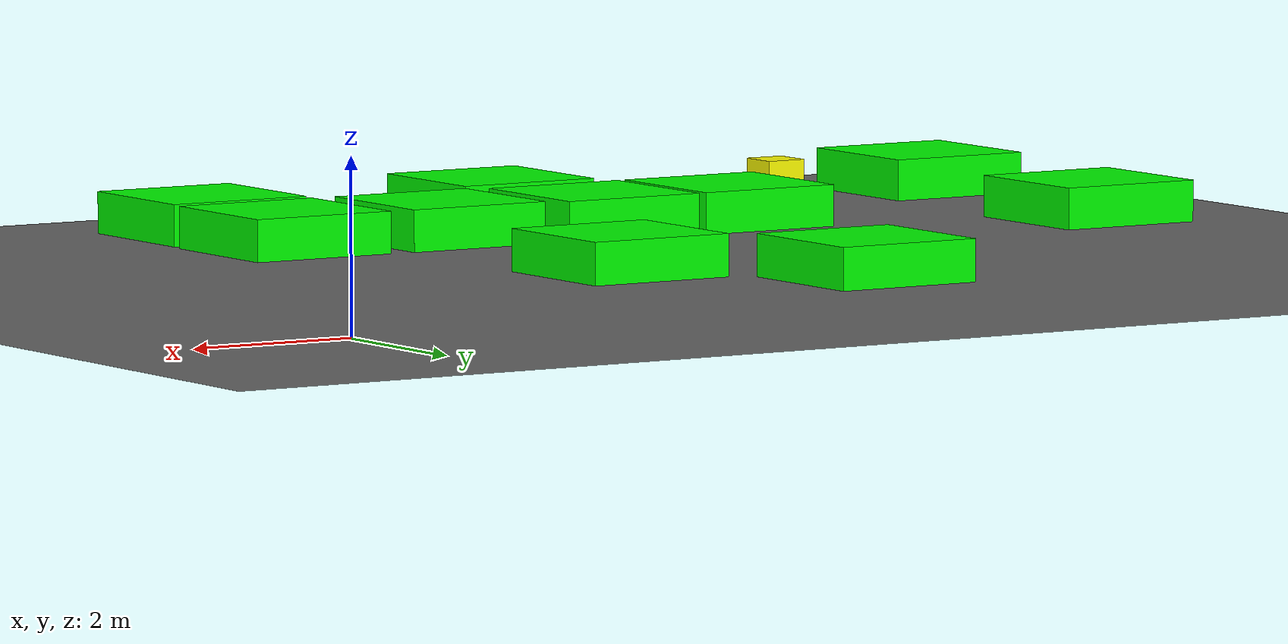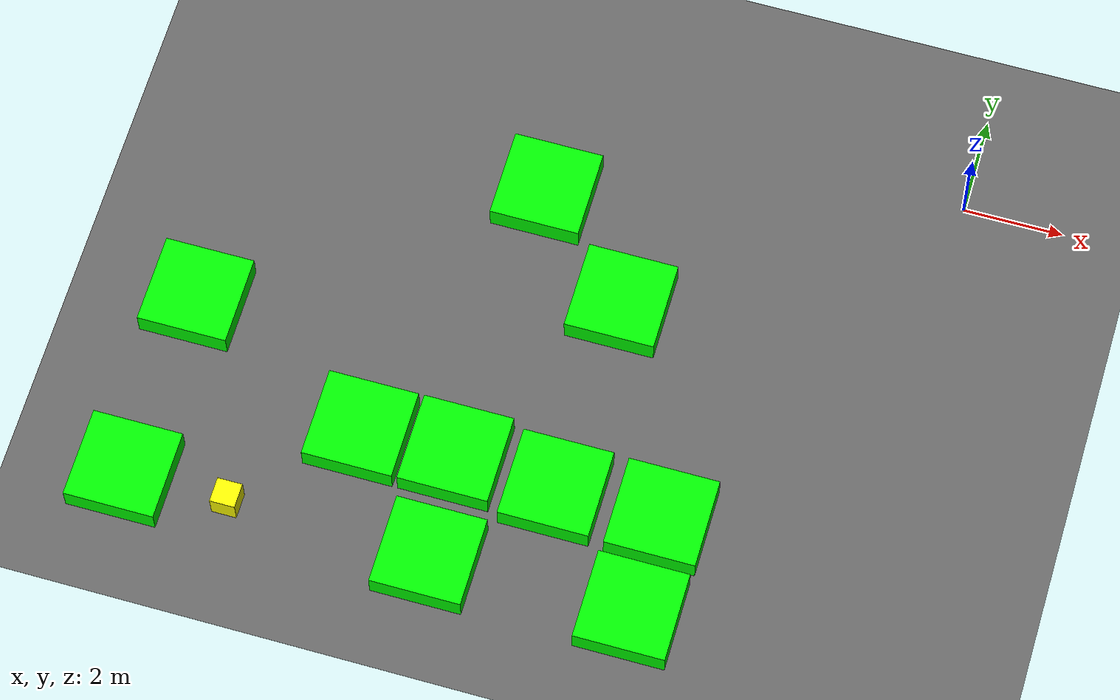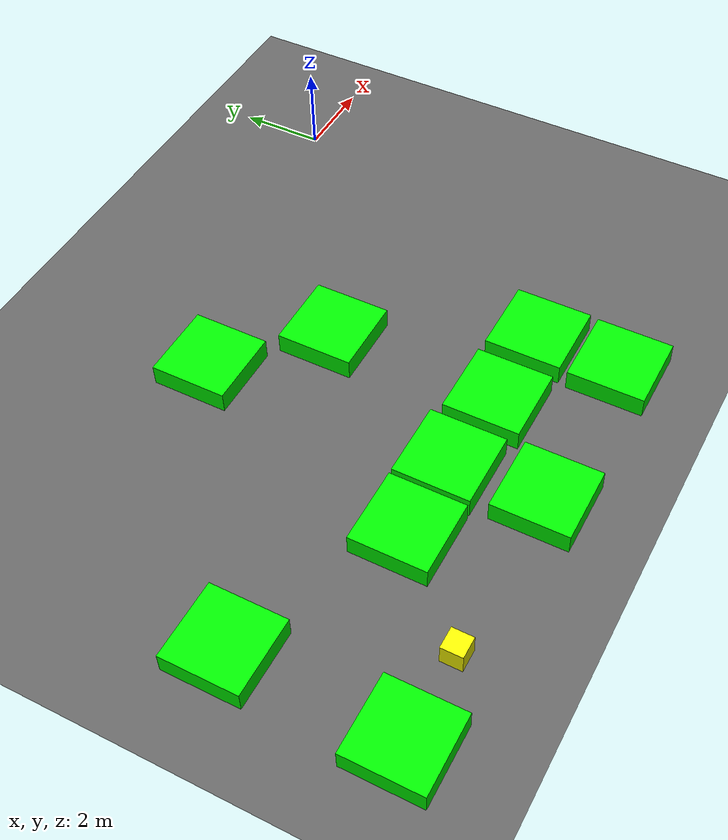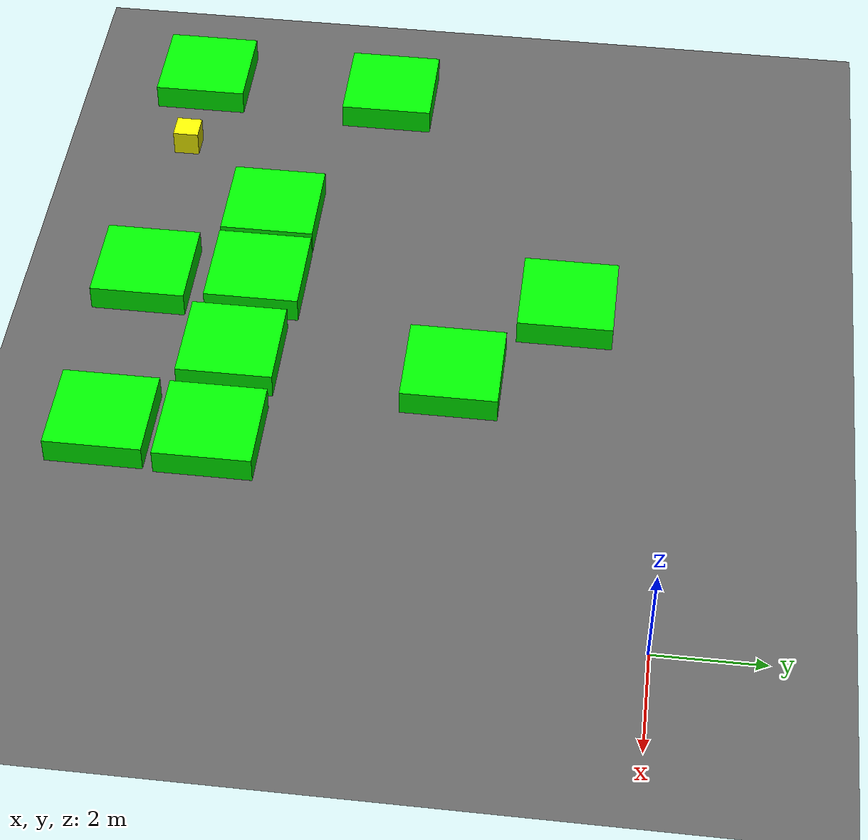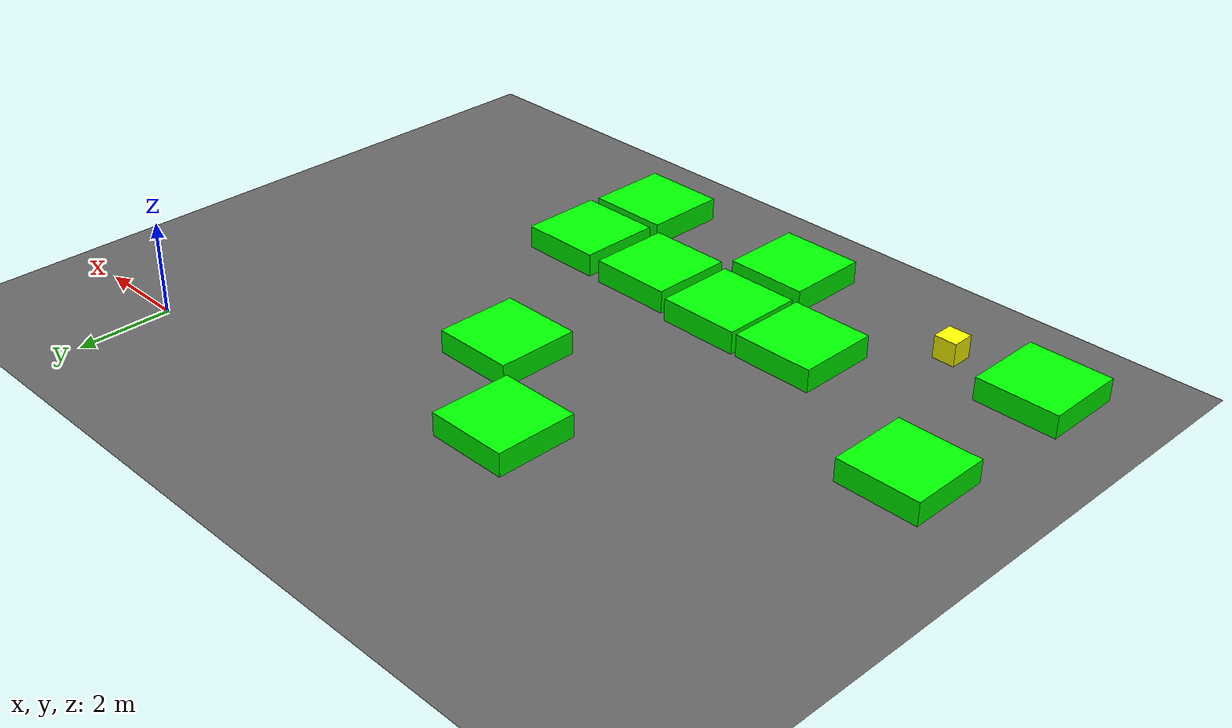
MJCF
<mujoco model="lvl5_corridor_obs10_dlong_depth1_seed46">
    <compiler angle="degree" coordinate="local" inertiafromgeom="true"/>
    <option integrator="RK4" timestep="0.01"/>

    <asset>
        <texture builtin="gradient" height="100" rgb1="0.6 0.8 1" rgb2="0 0 0" type="skybox" width="100"/>
        <texture name="floor_texture" type="2d" builtin="checker" width="100" height="100" rgb1="0 0 0" rgb2="0.8 0.8 0.8"/>
        <material name="MatPlane" reflectance="0.5" shininess="1" specular="1" texrepeat="10 10" texture="floor_texture"/>
    </asset>

    <!-- Excluding the contact between the agent and the goal, and the agent and the floor -->
    <contact>
        <exclude body1="agent" body2="goal"/>
        <exclude body1 = "agent" body2 = "floor"/>
    </contact>

    <extension>
        <plugin plugin = "mujoco.pid">
            <instance name = "pid1">
                <config key="kp" value="2"/>
                <config key="ki" value="0"/>
                <config key="kd" value="55"/>
            </instance>
        </plugin>
    </extension>

    <worldbody>
        <light cutoff="100" diffuse="1 1 1" dir="-0 0 -1.3" directional="true" exponent="1" pos="0 0 1.3" specular=".1 .1 .1"/>
        <body name="floor" pos="0 0 0">
            <geom name="floor_geom" type="plane" size="20 20 0.1" material="MatPlane"/>
        </body>

                <body name="goal" pos="0.0000 0.0000 0">
            <geom name="goal_geom" type="plane" size="0.5 0.5 1" pos="0 0 0" rgba="1 0 0 1"/>
        </body>

                <body name="agent" pos="-12.0000 -10.0000 0.250">
            <joint name="j1" type="slide" axis ="1 0 0 "/>
            <joint name="j2" type="slide" axis ="0 1 0 "/>
            <geom name="agent_geom" type="box" size="0.25 0.25 0.250" rgba="1 1 0 1"/>
        </body>

        <body name="obstacle1" pos="-8.0075 -1.9498 0.250">  <geom name="obstacle1_geom" type="box" size="0.9000 0.9000 0.250" rgba="0 1 0 1"/></body>
        <body name="obstacle2" pos="-5.9266 -3.9109 0.250">  <geom name="obstacle2_geom" type="box" size="0.9000 0.9000 0.250" rgba="0 1 0 1"/></body>
        <body name="obstacle3" pos="-13.9096 -6.0630 0.250">  <geom name="obstacle3_geom" type="box" size="0.9000 0.9000 0.250" rgba="0 1 0 1"/></body>
        <body name="obstacle4" pos="-9.9866 -7.9115 0.250">  <geom name="obstacle4_geom" type="box" size="0.9000 0.9000 0.250" rgba="0 1 0 1"/></body>
        <body name="obstacle5" pos="-8.0816 -7.9078 0.250">  <geom name="obstacle5_geom" type="box" size="0.9000 0.9000 0.250" rgba="0 1 0 1"/></body>
        <body name="obstacle6" pos="-6.0460 -8.0683 0.250">  <geom name="obstacle6_geom" type="box" size="0.9000 0.9000 0.250" rgba="0 1 0 1"/></body>
        <body name="obstacle7" pos="-3.9452 -8.0975 0.250">  <geom name="obstacle7_geom" type="box" size="0.9000 0.9000 0.250" rgba="0 1 0 1"/></body>
        <body name="obstacle8" pos="-14.0723 -9.9645 0.250">  <geom name="obstacle8_geom" type="box" size="0.9000 0.9000 0.250" rgba="0 1 0 1"/></body>
        <body name="obstacle9" pos="-7.9688 -10.0691 0.250">  <geom name="obstacle9_geom" type="box" size="0.9000 0.9000 0.250" rgba="0 1 0 1"/></body>
        <body name="obstacle10" pos="-3.9852 -10.0890 0.250">  <geom name="obstacle10_geom" type="box" size="0.9000 0.9000 0.250" rgba="0 1 0 1"/></body>

    </worldbody>

    <sensor>
<!-- SENSORS -->

        <distance name="dist1" geom1="agent_geom" geom2="obstacle1_geom" cutoff="1.5"/>
        <distance name="dist2" geom1="agent_geom" geom2="obstacle2_geom" cutoff="1.5"/>
        <distance name="dist3" geom1="agent_geom" geom2="obstacle3_geom" cutoff="1.5"/>
        <distance name="dist4" geom1="agent_geom" geom2="obstacle4_geom" cutoff="1.5"/>
        <distance name="dist5" geom1="agent_geom" geom2="obstacle5_geom" cutoff="1.5"/>
        <distance name="dist6" geom1="agent_geom" geom2="obstacle6_geom" cutoff="1.5"/>
        <distance name="dist7" geom1="agent_geom" geom2="obstacle7_geom" cutoff="1.5"/>
        <distance name="dist8" geom1="agent_geom" geom2="obstacle8_geom" cutoff="1.5"/>
        <distance name="dist9" geom1="agent_geom" geom2="obstacle9_geom" cutoff="1.5"/>
        <distance name="dist10" geom1="agent_geom" geom2="obstacle10_geom" cutoff="1.5"/>
</sensor>

    <actuator>
        <plugin joint="j1" plugin="mujoco.pid" instance="pid1" />
        <plugin joint="j2" plugin="mujoco.pid" instance="pid1"/>
    </actuator>
</mujoco>
